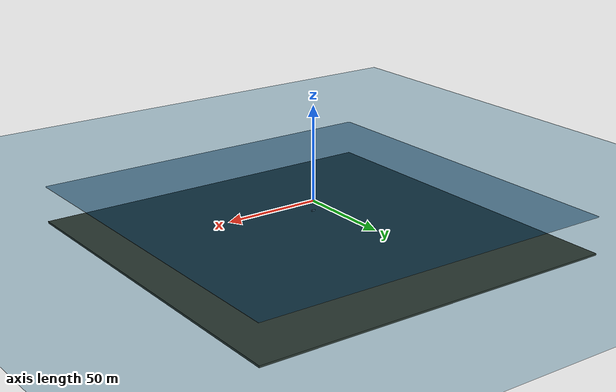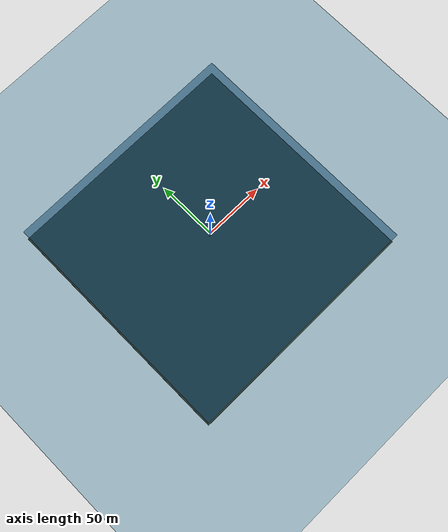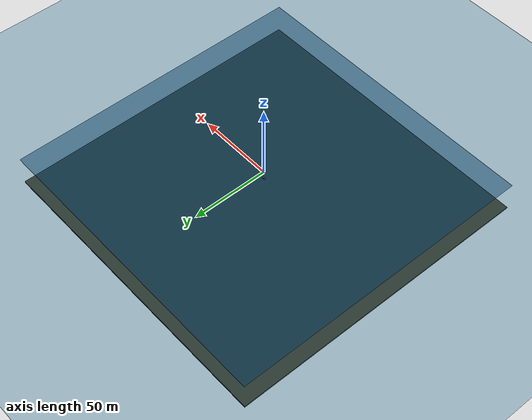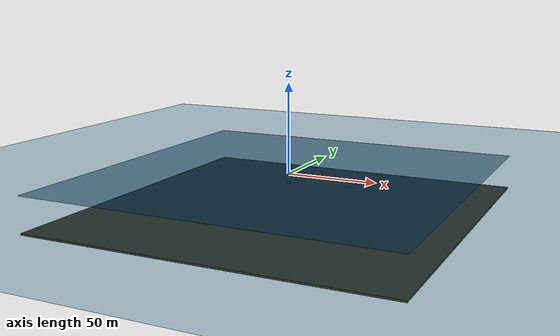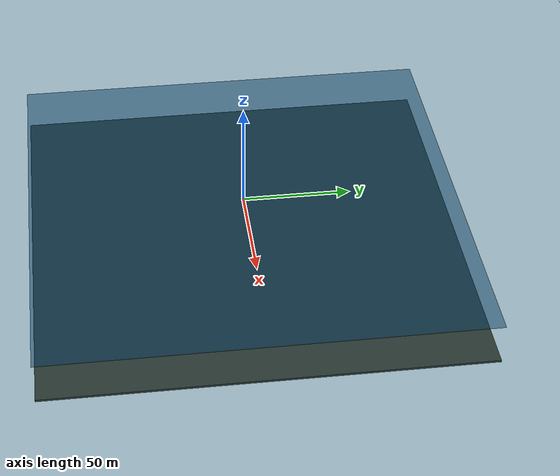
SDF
<?xml version="1.0"?>
<sdf version="1.6">

  <world name="oceansync_world">

    <gravity>0 0 -9.81</gravity>

    <physics type="ode">
      <max_step_size>0.002</max_step_size>
      <real_time_factor>1.0</real_time_factor>
      <real_time_update_rate>500</real_time_update_rate>
    </physics>

    <!-- UNDERWATER ATMOSPHERE          -->

    <scene>

      <ambient>0.02 0.08 0.12 1</ambient>

      <background>0.01 0.04 0.07 1</background>

      <shadows>true</shadows>

      <fog>
        <color>0.01 0.12 0.18</color>
        <type>linear</type>
        <start>10</start>
        <end>80</end>
      </fog>

    </scene>

    <!-- SUN                            -->

    <light name="sun" type="directional">

      <cast_shadows>true</cast_shadows>

      <pose>0 0 50 0 0 0</pose>

      <diffuse>0.7 0.8 0.9 1</diffuse>

      <specular>0.2 0.3 0.4 1</specular>

      <direction>
        -0.3 0.2 -1
      </direction>

    </light>

    <!-- SEA FLOOR                      -->

    <model name="seabed">

      <static>true</static>

      <link name="seabed_link">

        <collision name="seabed_collision">

          <pose>0 0 -20 0 0 0</pose>

          <geometry>

            <box>
              <size>200 200 1</size>
            </box>

          </geometry>

        </collision>

        <visual name="seabed_visual">

          <pose>0 0 -20 0 0 0</pose>

          <geometry>

            <box>
              <size>200 200 1</size>
            </box>

          </geometry>

          <material>

            <ambient>0.15 0.10 0.05 1</ambient>

            <diffuse>0.25 0.18 0.08 1</diffuse>

          </material>

        </visual>

      </link>

    </model>

    <!-- WATER VOLUME                   -->

    <model name="ocean_volume">

      <static>true</static>

      <link name="water_volume">

        <visual name="water_visual">

          <pose>0 0 -10 0 0 0</pose>

          <geometry>

            <box>
              <size>200 200 20</size>
            </box>

          </geometry>

          <material>

            <ambient>0.0 0.12 0.20 0.65</ambient>

            <diffuse>0.0 0.25 0.40 0.65</diffuse>

            <specular>0.3 0.5 0.6 1</specular>

            <transparency>0.35</transparency>

          </material>

        </visual>

      </link>

    </model>

    <!-- WATER SURFACE                  -->

    <model name="water_surface">

      <static>true</static>

      <link name="surface_link">

        <visual name="surface_visual">

          <pose>0 0 0 0 0 0</pose>

          <geometry>

            <plane>

              <normal>0 0 1</normal>

              <size>200 200</size>

            </plane>

          </geometry>

          <material>

            <ambient>0.0 0.18 0.28 1</ambient>

            <diffuse>0.0 0.35 0.50 1</diffuse>

            <specular>0.7 0.8 0.9 1</specular>

            <shininess>100</shininess>

          </material>

        </visual>

      </link>

    </model>

    <!-- AUV                            -->

    <include>

      <uri>model://oceansync_auv</uri>

      <name>oceansync_auv</name>

      <pose>0 0 -5 0 0 0</pose>

    </include>

  </world>

</sdf>

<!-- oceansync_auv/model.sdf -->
<sdf version="1.6">
  <model name="oceansync_auv">

    <static>false</static>

    <pose>0 0 0 0 0 0</pose>

    <link name="base_link">
   <link name="buoyancy_volume">

  <pose>0 0 0 0 0 0</pose>

  <inertial>
    <mass>0.1</mass>
    <inertia>
      <ixx>0.001</ixx>
      <iyy>0.001</iyy>
      <izz>0.001</izz>
      <ixy>0</ixy>
      <ixz>0</ixz>
      <iyz>0</iyz>
    </inertia>
  </inertial>

  <collision name="buoyancy_collision">
    <geometry>
      <box>
        <size>2.0 0.8 0.6</size>
      </box>
    </geometry>
  </collision>

  <visual name="buoyancy_visual">
    <visible>false</visible>
    <geometry>
      <box>
        <size>2.0 0.8 0.6</size>
      </box>
    </geometry>
  </visual>

</link>

<joint name="buoyancy_volume_joint" type="fixed">
  <parent>base_link</parent>
  <child>buoyancy_volume</child>
</joint>
      <inertial>
        <mass>50.0</mass>

        <inertia>
          <ixx>8.0</ixx>
          <iyy>18.0</iyy>
          <izz>20.0</izz>
          <ixy>0.0</ixy>
          <ixz>0.0</ixz>
          <iyz>0.0</iyz>
        </inertia>
      </inertial>

      <!-- Temporary body.
           Later this can be replaced by the final CAD mesh. -->
      <collision name="body_collision">
        <geometry>
          <box>
            <size>2.0 0.8 0.6</size>
          </box>
        </geometry>
      </collision>

      <visual name="body_visual">
        <geometry>
          <box>
            <size>2.0 0.8 0.6</size>
          </box>
        </geometry>
      </visual>

      <!-- IMU                       -->

      <sensor name="imu" type="imu">

        <always_on>true</always_on>
        <update_rate>100</update_rate>

        <plugin
          name="imu_plugin"
          filename="libgazebo_ros_imu_sensor.so">

          <ros>
            <namespace>/oceansync</namespace>
            <remapping>~/out:=imu/data</remapping>
          </ros>

          <frame_name>imu_link</frame_name>

        </plugin>

      </sensor>

      <!-- CAMERA                    -->

      <sensor name="camera" type="camera">

        <pose>1.0 0 0 0 0 0</pose>

        <always_on>true</always_on>
        <update_rate>20</update_rate>

        <camera>

          <horizontal_fov>1.047</horizontal_fov>

          <image>
            <width>640</width>
            <height>480</height>
            <format>R8G8B8</format>
          </image>

          <clip>
            <near>0.1</near>
            <far>50.0</far>
          </clip>

        </camera>

        <plugin
          name="camera_plugin"
          filename="libgazebo_ros_camera.so">

          <ros>
            <namespace>/oceansync</namespace>
            <remapping>image_raw:=camera/image_raw</remapping>
          </ros>

          <camera_name>underwater_camera</camera_name>
          <frame_name>camera_link</frame_name>

        </plugin>

      </sensor>

      <!-- SONAR / RAY SENSOR        -->

      <sensor name="sonar" type="ray">

        <pose>1.0 0 0 0 0 0</pose>

        <always_on>true</always_on>
        <update_rate>10</update_rate>

        <ray>

          <scan>

            <horizontal>
              <samples>181</samples>
              <resolution>1</resolution>
              <min_angle>-1.5708</min_angle>
              <max_angle>1.5708</max_angle>
            </horizontal>

          </scan>

          <range>
            <min>0.2</min>
            <max>50.0</max>
            <resolution>0.05</resolution>
          </range>

        </ray>

        <plugin
          name="sonar_plugin"
          filename="libgazebo_ros_ray_sensor.so">

          <ros>
            <namespace>/oceansync</namespace>
            <remapping>~/out:=sonar/scan</remapping>
          </ros>

          <output_type>sensor_msgs/LaserScan</output_type>
          <frame_name>sonar_link</frame_name>

        </plugin>

      </sensor>

    </link>

    <!-- SENSOR FRAMES             -->

    <link name="imu_link"/>

    <joint name="imu_joint" type="fixed">
      <parent>base_link</parent>
      <child>imu_link</child>
    </joint>

    <link name="camera_link"/>

    <joint name="camera_joint" type="fixed">
      <parent>base_link</parent>
      <child>camera_link</child>
    </joint>

    <link name="sonar_link"/>

    <joint name="sonar_joint" type="fixed">
      <parent>base_link</parent>
      <child>sonar_link</child>
    </joint>

    <!-- BUOYANCY                  -->

  </model>
</sdf>
